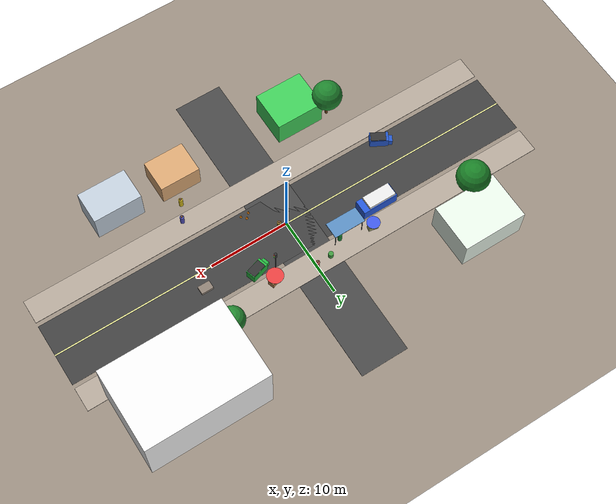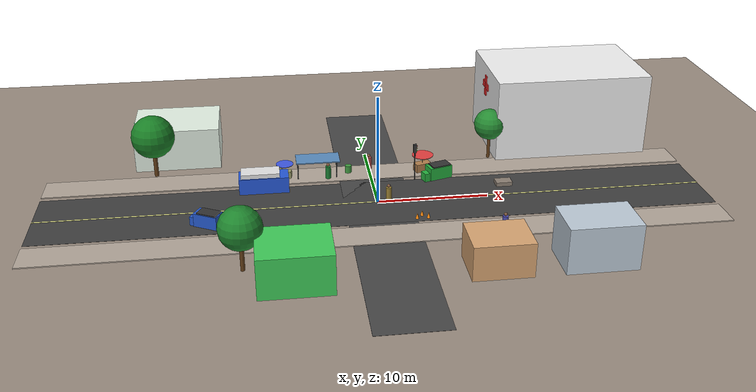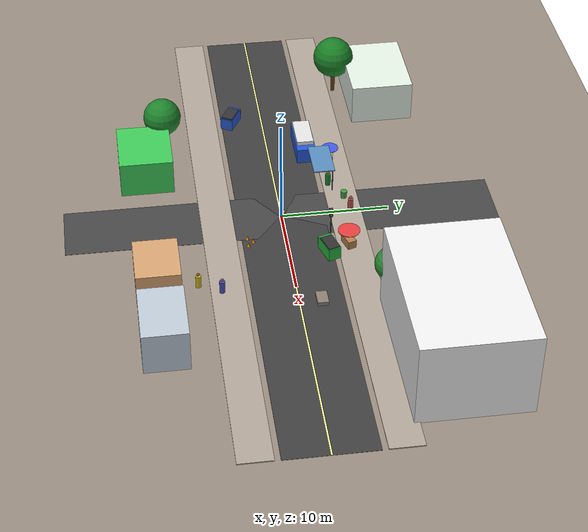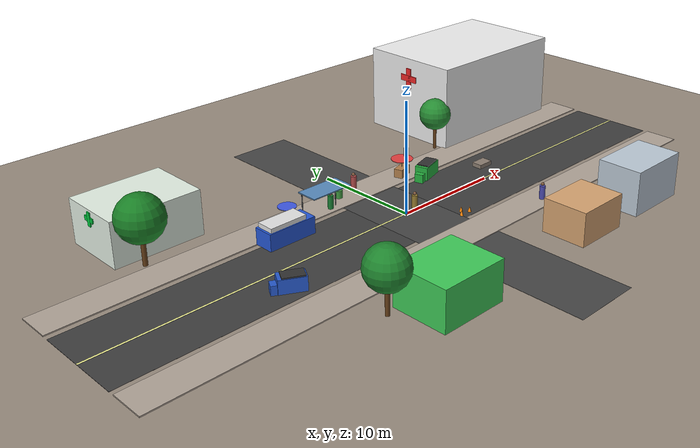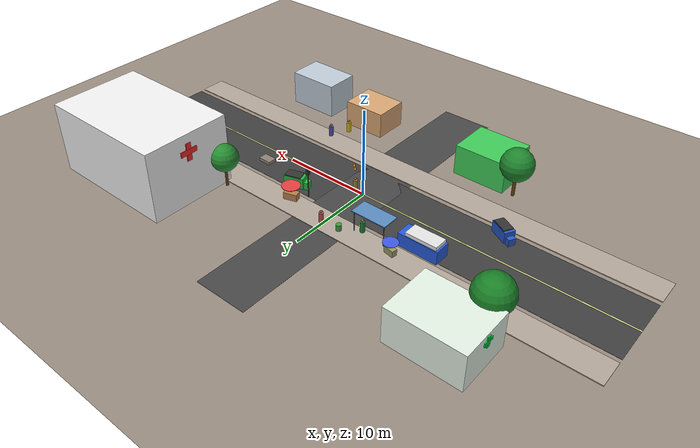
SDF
<?xml version="1.0" ?>
<sdf version="1.7">
  <world name="addis_ababa_urban">

    <!-- ==================== PHYSICS ==================== -->
    <physics type="ode">
      <max_step_size>0.001</max_step_size>
      <real_time_factor>1</real_time_factor>
      <real_time_update_rate>1000</real_time_update_rate>
      <gravity xyz="0 0 -9.81"/>
    </physics>

    <!-- ==================== SCENE ==================== -->
    <scene>
      <ambient>0.6 0.6 0.6 1</ambient>
      <background>0.7 0.85 1.0 1</background>
      <shadows>true</shadows>
    </scene>

    <!-- ==================== LIGHTING ==================== -->
    <!-- Ethiopian Highland Sun -->
    <light type="directional" name="sun">
      <cast_shadows>true</cast_shadows>
      <pose>0 0 50 0 0 0</pose>
      <diffuse>0.9 0.9 0.8 1</diffuse>
      <specular>0.3 0.3 0.3 1</specular>
      <direction>-0.5 0.3 -1</direction>
    </light>

    <!-- Ambient fill light -->
    <light type="point" name="ambient_light">
      <pose>0 0 15 0 0 0</pose>
      <diffuse>0.3 0.3 0.35 1</diffuse>
      <specular>0.1 0.1 0.1 1</specular>
      <attenuation>
        <range>100</range>
        <constant>0.5</constant>
        <linear>0.01</linear>
        <quadratic>0.001</quadratic>
      </attenuation>
    </light>

    <!-- ==================== GROUND PLANE ==================== -->
    <model name="ground_plane">
      <static>true</static>
      <link name="link">
        <collision name="collision">
          <geometry>
            <plane>
              <normal>0 0 1</normal>
              <size>200 200</size>
            </plane>
          </geometry>
          <surface>
            <friction>
              <ode>
                <mu>100</mu>
                <mu2>50</mu2>
              </ode>
            </friction>
          </surface>
        </collision>
        <visual name="visual">
          <geometry>
            <plane>
              <normal>0 0 1</normal>
              <size>200 200</size>
            </plane>
          </geometry>
          <material>
            <ambient>0.5 0.45 0.4 1</ambient>
            <diffuse>0.6 0.55 0.5 1</diffuse>
          </material>
        </visual>
      </link>
    </model>

    <!-- ==================== MAIN ROAD ==================== -->
    <model name="main_road">
      <static>true</static>
      <pose>0 0 0.01 0 0 0</pose>
      <link name="link">
        <collision name="collision">
          <geometry>
            <box>
              <size>60 8 0.02</size>
            </box>
          </geometry>
        </collision>
        <visual name="visual">
          <geometry>
            <box>
              <size>60 8 0.02</size>
            </box>
          </geometry>
          <material>
            <ambient>0.2 0.2 0.2 1</ambient>
            <diffuse>0.25 0.25 0.25 1</diffuse>
          </material>
        </visual>
      </link>
    </model>

    <!-- Road Center Line Markings -->
    <model name="center_line">
      <static>true</static>
      <pose>0 0 0.025 0 0 0</pose>
      <link name="link">
        <visual name="visual">
          <geometry>
            <box>
              <size>60 0.15 0.01</size>
            </box>
          </geometry>
          <material>
            <ambient>1 1 0.8 1</ambient>
            <diffuse>1 1 0.6 1</diffuse>
          </material>
        </visual>
      </link>
    </model>

    <!-- ==================== CROSS STREET ==================== -->
    <model name="cross_street">
      <static>true</static>
      <pose>0 0 0.01 0 0 1.5708</pose>
      <link name="link">
        <collision name="collision">
          <geometry>
            <box>
              <size>40 6 0.02</size>
            </box>
          </geometry>
        </collision>
        <visual name="visual">
          <geometry>
            <box>
              <size>40 6 0.02</size>
            </box>
          </geometry>
          <material>
            <ambient>0.22 0.22 0.22 1</ambient>
            <diffuse>0.28 0.28 0.28 1</diffuse>
          </material>
        </visual>
      </link>
    </model>

    <!-- ==================== SIDEWALKS ==================== -->
    <!-- North Sidewalk -->
    <model name="sidewalk_north">
      <static>true</static>
      <pose>0 6 0.05 0 0 0</pose>
      <link name="link">
        <collision name="collision">
          <geometry>
            <box>
              <size>60 3 0.1</size>
            </box>
          </geometry>
        </collision>
        <visual name="visual">
          <geometry>
            <box>
              <size>60 3 0.1</size>
            </box>
          </geometry>
          <material>
            <ambient>0.65 0.6 0.55 1</ambient>
            <diffuse>0.7 0.65 0.6 1</diffuse>
          </material>
        </visual>
      </link>
    </model>

    <!-- South Sidewalk -->
    <model name="sidewalk_south">
      <static>true</static>
      <pose>0 -6 0.05 0 0 0</pose>
      <link name="link">
        <collision name="collision">
          <geometry>
            <box>
              <size>60 3 0.1</size>
            </box>
          </geometry>
        </collision>
        <visual name="visual">
          <geometry>
            <box>
              <size>60 3 0.1</size>
            </box>
          </geometry>
          <material>
            <ambient>0.65 0.6 0.55 1</ambient>
            <diffuse>0.7 0.65 0.6 1</diffuse>
          </material>
        </visual>
      </link>
    </model>

    <!-- ==================== HOSPITAL (Delivery Destination) ==================== -->
    <model name="tikur_anbessa_hospital">
      <static>true</static>
      <pose>20 12 0 0 0 0</pose>
      <link name="link">
        <!-- Main Building -->
        <collision name="collision">
          <geometry>
            <box>
              <size>15 10 8</size>
            </box>
          </geometry>
          <pose>0 0 4 0 0 0</pose>
        </collision>
        <visual name="main_building">
          <geometry>
            <box>
              <size>15 10 8</size>
            </box>
          </geometry>
          <pose>0 0 4 0 0 0</pose>
          <material>
            <ambient>0.9 0.9 0.9 1</ambient>
            <diffuse>0.95 0.95 0.95 1</diffuse>
          </material>
        </visual>
        <!-- Red Cross Symbol -->
        <visual name="cross_h">
          <geometry>
            <box>
              <size>0.1 2 0.6</size>
            </box>
          </geometry>
          <pose>-7.55 0 6 0 0 0</pose>
          <material>
            <ambient>0.9 0.1 0.1 1</ambient>
            <diffuse>0.95 0.15 0.15 1</diffuse>
          </material>
        </visual>
        <visual name="cross_v">
          <geometry>
            <box>
              <size>0.1 0.6 2</size>
            </box>
          </geometry>
          <pose>-7.55 0 6 0 0 0</pose>
          <material>
            <ambient>0.9 0.1 0.1 1</ambient>
            <diffuse>0.95 0.15 0.15 1</diffuse>
          </material>
        </visual>
      </link>
    </model>

    <!-- ==================== CLINIC (Secondary Destination) ==================== -->
    <model name="health_clinic">
      <static>true</static>
      <pose>-18 12 0 0 0 0</pose>
      <link name="link">
        <collision name="collision">
          <geometry>
            <box>
              <size>8 6 4</size>
            </box>
          </geometry>
          <pose>0 0 2 0 0 0</pose>
        </collision>
        <visual name="visual">
          <geometry>
            <box>
              <size>8 6 4</size>
            </box>
          </geometry>
          <pose>0 0 2 0 0 0</pose>
          <material>
            <ambient>0.85 0.9 0.85 1</ambient>
            <diffuse>0.9 0.95 0.9 1</diffuse>
          </material>
        </visual>
        <!-- Green Cross for Clinic -->
        <visual name="clinic_cross_h">
          <geometry>
            <box>
              <size>0.1 1.2 0.4</size>
            </box>
          </geometry>
          <pose>-4.05 0 3.2 0 0 0</pose>
          <material>
            <ambient>0.0 0.7 0.2 1</ambient>
            <diffuse>0.0 0.8 0.25 1</diffuse>
          </material>
        </visual>
        <visual name="clinic_cross_v">
          <geometry>
            <box>
              <size>0.1 0.4 1.2</size>
            </box>
          </geometry>
          <pose>-4.05 0 3.2 0 0 0</pose>
          <material>
            <ambient>0.0 0.7 0.2 1</ambient>
            <diffuse>0.0 0.8 0.25 1</diffuse>
          </material>
        </visual>
      </link>
    </model>

    <!-- ==================== PHARMACY ==================== -->
    <model name="pharmacy">
      <static>true</static>
      <pose>-8 -12 0 0 0 0</pose>
      <link name="link">
        <collision name="collision">
          <geometry>
            <box>
              <size>6 5 3.5</size>
            </box>
          </geometry>
          <pose>0 0 1.75 0 0 0</pose>
        </collision>
        <visual name="visual">
          <geometry>
            <box>
              <size>6 5 3.5</size>
            </box>
          </geometry>
          <pose>0 0 1.75 0 0 0</pose>
          <material>
            <ambient>0.2 0.7 0.3 1</ambient>
            <diffuse>0.25 0.8 0.35 1</diffuse>
          </material>
        </visual>
      </link>
    </model>

    <!-- ==================== COMMERCIAL BUILDINGS ==================== -->
    <!-- Ethiopian Style Shop 1 -->
    <model name="shop_1">
      <static>true</static>
      <pose>8 -12 0 0 0 0</pose>
      <link name="link">
        <collision name="collision">
          <geometry>
            <box>
              <size>5 4 3</size>
            </box>
          </geometry>
          <pose>0 0 1.5 0 0 0</pose>
        </collision>
        <visual name="visual">
          <geometry>
            <box>
              <size>5 4 3</size>
            </box>
          </geometry>
          <pose>0 0 1.5 0 0 0</pose>
          <material>
            <ambient>0.8 0.6 0.4 1</ambient>
            <diffuse>0.85 0.65 0.45 1</diffuse>
          </material>
        </visual>
      </link>
    </model>

    <!-- Ethiopian Style Shop 2 -->
    <model name="shop_2">
      <static>true</static>
      <pose>16 -12 0 0 0 0</pose>
      <link name="link">
        <collision name="collision">
          <geometry>
            <box>
              <size>6 4 4</size>
            </box>
          </geometry>
          <pose>0 0 2 0 0 0</pose>
        </collision>
        <visual name="visual">
          <geometry>
            <box>
              <size>6 4 4</size>
            </box>
          </geometry>
          <pose>0 0 2 0 0 0</pose>
          <material>
            <ambient>0.7 0.75 0.8 1</ambient>
            <diffuse>0.75 0.8 0.85 1</diffuse>
          </material>
        </visual>
      </link>
    </model>

    <!-- ==================== MINIBUS TAXI STOP ==================== -->
    <model name="minibus_stop">
      <static>true</static>
      <pose>-5 4.5 0 0 0 0</pose>
      <link name="link">
        <!-- Shelter Roof -->
        <visual name="roof">
          <geometry>
            <box>
              <size>4 2 0.1</size>
            </box>
          </geometry>
          <pose>0 0 2.5 0 0 0</pose>
          <material>
            <ambient>0.3 0.5 0.7 1</ambient>
            <diffuse>0.35 0.55 0.75 1</diffuse>
          </material>
        </visual>
        <!-- Support Poles -->
        <visual name="pole_1">
          <geometry>
            <cylinder>
              <radius>0.05</radius>
              <length>2.5</length>
            </cylinder>
          </geometry>
          <pose>-1.8 0.8 1.25 0 0 0</pose>
          <material>
            <ambient>0.4 0.4 0.4 1</ambient>
          </material>
        </visual>
        <visual name="pole_2">
          <geometry>
            <cylinder>
              <radius>0.05</radius>
              <length>2.5</length>
            </cylinder>
          </geometry>
          <pose>1.8 0.8 1.25 0 0 0</pose>
          <material>
            <ambient>0.4 0.4 0.4 1</ambient>
          </material>
        </visual>
        <collision name="collision">
          <geometry>
            <box>
              <size>4 2 2.5</size>
            </box>
          </geometry>
          <pose>0 0 1.25 0 0 0</pose>
        </collision>
      </link>
    </model>

    <!-- ==================== BAJAJ (Ethiopian Three-Wheeler Taxi) ==================== -->
    <model name="bajaj_1">
      <static>true</static>
      <pose>6 3.5 0 0 0 0.3</pose>
      <link name="link">
        <!-- Main Body -->
        <collision name="collision">
          <geometry>
            <box>
              <size>2.5 1.3 1.8</size>
            </box>
          </geometry>
          <pose>0 0 0.9 0 0 0</pose>
        </collision>
        <visual name="body">
          <geometry>
            <box>
              <size>2.2 1.2 1.2</size>
            </box>
          </geometry>
          <pose>0.2 0 1.0 0 0 0</pose>
          <material>
            <!-- Bajaj green-yellow (common in Addis) -->
            <ambient>0.1 0.6 0.2 1</ambient>
            <diffuse>0.15 0.7 0.25 1</diffuse>
          </material>
        </visual>
        <!-- Front Hood -->
        <visual name="front">
          <geometry>
            <box>
              <size>0.8 0.8 0.8</size>
            </box>
          </geometry>
          <pose>-1.0 0 0.7 0 0 0</pose>
          <material>
            <ambient>0.1 0.6 0.2 1</ambient>
            <diffuse>0.15 0.7 0.25 1</diffuse>
          </material>
        </visual>
        <!-- Roof -->
        <visual name="roof">
          <geometry>
            <box>
              <size>1.8 1.1 0.1</size>
            </box>
          </geometry>
          <pose>0.3 0 1.65 0 0 0</pose>
          <material>
            <ambient>0.2 0.2 0.2 1</ambient>
          </material>
        </visual>
      </link>
    </model>

    <!-- Second Bajaj -->
    <model name="bajaj_2">
      <static>true</static>
      <pose>-15 -3 0 0 0 -0.5</pose>
      <link name="link">
        <collision name="collision">
          <geometry>
            <box>
              <size>2.5 1.3 1.8</size>
            </box>
          </geometry>
          <pose>0 0 0.9 0 0 0</pose>
        </collision>
        <visual name="body">
          <geometry>
            <box>
              <size>2.2 1.2 1.2</size>
            </box>
          </geometry>
          <pose>0.2 0 1.0 0 0 0</pose>
          <material>
            <!-- Blue Bajaj variant -->
            <ambient>0.1 0.3 0.7 1</ambient>
            <diffuse>0.15 0.35 0.8 1</diffuse>
          </material>
        </visual>
        <visual name="front">
          <geometry>
            <box>
              <size>0.8 0.8 0.8</size>
            </box>
          </geometry>
          <pose>-1.0 0 0.7 0 0 0</pose>
          <material>
            <ambient>0.1 0.3 0.7 1</ambient>
            <diffuse>0.15 0.35 0.8 1</diffuse>
          </material>
        </visual>
        <visual name="roof">
          <geometry>
            <box>
              <size>1.8 1.1 0.1</size>
            </box>
          </geometry>
          <pose>0.3 0 1.65 0 0 0</pose>
          <material>
            <ambient>0.2 0.2 0.2 1</ambient>
          </material>
        </visual>
      </link>
    </model>

    <!-- ==================== PARKED MINIBUS TAXI ==================== -->
    <model name="minibus_taxi">
      <static>true</static>
      <pose>-10 3.5 0 0 0 0</pose>
      <link name="link">
        <collision name="collision">
          <geometry>
            <box>
              <size>4.5 1.8 2</size>
            </box>
          </geometry>
          <pose>0 0 1 0 0 0</pose>
        </collision>
        <visual name="body">
          <geometry>
            <box>
              <size>4.5 1.8 1.5</size>
            </box>
          </geometry>
          <pose>0 0 0.9 0 0 0</pose>
          <material>
            <!-- Blue and white minibus (typical Addis) -->
            <ambient>0.1 0.3 0.8 1</ambient>
            <diffuse>0.15 0.35 0.85 1</diffuse>
          </material>
        </visual>
        <visual name="roof">
          <geometry>
            <box>
              <size>3.5 1.6 0.4</size>
            </box>
          </geometry>
          <pose>-0.3 0 1.85 0 0 0</pose>
          <material>
            <ambient>0.9 0.9 0.9 1</ambient>
          </material>
        </visual>
      </link>
    </model>

    <!-- ==================== STREET VENDOR CART ==================== -->
    <model name="vendor_cart">
      <static>true</static>
      <pose>5 5.5 0 0 0 0.3</pose>
      <link name="link">
        <collision name="collision">
          <geometry>
            <box>
              <size>1.5 0.8 1.2</size>
            </box>
          </geometry>
          <pose>0 0 0.6 0 0 0</pose>
        </collision>
        <visual name="cart">
          <geometry>
            <box>
              <size>1.5 0.8 0.8</size>
            </box>
          </geometry>
          <pose>0 0 0.6 0 0 0</pose>
          <material>
            <ambient>0.6 0.4 0.2 1</ambient>
            <diffuse>0.7 0.5 0.3 1</diffuse>
          </material>
        </visual>
        <!-- Umbrella -->
        <visual name="umbrella">
          <geometry>
            <cylinder>
              <radius>1.0</radius>
              <length>0.05</length>
            </cylinder>
          </geometry>
          <pose>0 0 1.8 0 0 0</pose>
          <material>
            <ambient>0.8 0.2 0.2 1</ambient>
            <diffuse>0.9 0.25 0.25 1</diffuse>
          </material>
        </visual>
        <visual name="umbrella_pole">
          <geometry>
            <cylinder>
              <radius>0.02</radius>
              <length>1.2</length>
            </cylinder>
          </geometry>
          <pose>0 0 1.2 0 0 0</pose>
          <material>
            <ambient>0.3 0.3 0.3 1</ambient>
          </material>
        </visual>
      </link>
    </model>

    <!-- Second Vendor -->
    <model name="vendor_cart_2">
      <static>true</static>
      <pose>-8 5.8 0 0 0 -0.2</pose>
      <link name="link">
        <collision name="collision">
          <geometry>
            <box>
              <size>1.2 0.6 1.0</size>
            </box>
          </geometry>
          <pose>0 0 0.5 0 0 0</pose>
        </collision>
        <visual name="cart">
          <geometry>
            <box>
              <size>1.2 0.6 0.7</size>
            </box>
          </geometry>
          <pose>0 0 0.5 0 0 0</pose>
          <material>
            <ambient>0.5 0.5 0.3 1</ambient>
            <diffuse>0.6 0.6 0.4 1</diffuse>
          </material>
        </visual>
        <!-- Blue umbrella -->
        <visual name="umbrella">
          <geometry>
            <cylinder>
              <radius>0.8</radius>
              <length>0.05</length>
            </cylinder>
          </geometry>
          <pose>0 0 1.5 0 0 0</pose>
          <material>
            <ambient>0.2 0.3 0.8 1</ambient>
            <diffuse>0.25 0.35 0.9 1</diffuse>
          </material>
        </visual>
      </link>
    </model>

    <!-- ==================== TRAFFIC CONES ==================== -->
    <model name="traffic_cone_1">
      <static>true</static>
      <pose>3 -3.5 0 0 0 0</pose>
      <link name="link">
        <collision name="collision">
          <geometry>
            <cone>
              <radius>0.15</radius>
              <length>0.5</length>
            </cone>
          </geometry>
          <pose>0 0 0.25 0 0 0</pose>
        </collision>
        <visual name="visual">
          <geometry>
            <cone>
              <radius>0.15</radius>
              <length>0.5</length>
            </cone>
          </geometry>
          <pose>0 0 0.25 0 0 0</pose>
          <material>
            <ambient>1 0.5 0 1</ambient>
            <diffuse>1 0.55 0.05 1</diffuse>
          </material>
        </visual>
      </link>
    </model>

    <model name="traffic_cone_2">
      <static>true</static>
      <pose>3.5 -3 0 0 0 0</pose>
      <link name="link">
        <collision name="collision">
          <geometry>
            <cone>
              <radius>0.15</radius>
              <length>0.5</length>
            </cone>
          </geometry>
          <pose>0 0 0.25 0 0 0</pose>
        </collision>
        <visual name="visual">
          <geometry>
            <cone>
              <radius>0.15</radius>
              <length>0.5</length>
            </cone>
          </geometry>
          <pose>0 0 0.25 0 0 0</pose>
          <material>
            <ambient>1 0.5 0 1</ambient>
            <diffuse>1 0.55 0.05 1</diffuse>
          </material>
        </visual>
      </link>
    </model>

    <model name="traffic_cone_3">
      <static>true</static>
      <pose>4 -3.5 0 0 0 0</pose>
      <link name="link">
        <collision name="collision">
          <geometry>
            <cone>
              <radius>0.15</radius>
              <length>0.5</length>
            </cone>
          </geometry>
          <pose>0 0 0.25 0 0 0</pose>
        </collision>
        <visual name="visual">
          <geometry>
            <cone>
              <radius>0.15</radius>
              <length>0.5</length>
            </cone>
          </geometry>
          <pose>0 0 0.25 0 0 0</pose>
          <material>
            <ambient>1 0.5 0 1</ambient>
            <diffuse>1 0.55 0.05 1</diffuse>
          </material>
        </visual>
      </link>
    </model>

    <!-- ==================== POTHOLES (Terrain Challenges) ==================== -->
    <model name="pothole_1">
      <static>true</static>
      <pose>-3 1 -0.08 0 0 0</pose>
      <link name="link">
        <collision name="collision">
          <geometry>
            <cylinder>
              <radius>0.4</radius>
              <length>0.1</length>
            </cylinder>
          </geometry>
        </collision>
        <visual name="visual">
          <geometry>
            <cylinder>
              <radius>0.4</radius>
              <length>0.1</length>
            </cylinder>
          </geometry>
          <material>
            <ambient>0.15 0.15 0.15 1</ambient>
            <diffuse>0.1 0.1 0.1 1</diffuse>
          </material>
        </visual>
      </link>
    </model>

    <model name="pothole_2">
      <static>true</static>
      <pose>10 -1.5 -0.06 0 0 0</pose>
      <link name="link">
        <collision name="collision">
          <geometry>
            <cylinder>
              <radius>0.3</radius>
              <length>0.08</length>
            </cylinder>
          </geometry>
        </collision>
        <visual name="visual">
          <geometry>
            <cylinder>
              <radius>0.3</radius>
              <length>0.08</length>
            </cylinder>
          </geometry>
          <material>
            <ambient>0.12 0.12 0.12 1</ambient>
            <diffuse>0.08 0.08 0.08 1</diffuse>
          </material>
        </visual>
      </link>
    </model>

    <!-- ==================== CONSTRUCTION DEBRIS ==================== -->
    <model name="debris_pile">
      <static>true</static>
      <pose>12 2 0 0 0 0</pose>
      <link name="link">
        <collision name="collision">
          <geometry>
            <box>
              <size>1.5 1.0 0.4</size>
            </box>
          </geometry>
          <pose>0 0 0.2 0 0 0</pose>
        </collision>
        <visual name="visual">
          <geometry>
            <box>
              <size>1.5 1.0 0.4</size>
            </box>
          </geometry>
          <pose>0 0 0.2 0 0 0</pose>
          <material>
            <ambient>0.5 0.45 0.4 1</ambient>
            <diffuse>0.55 0.5 0.45 1</diffuse>
          </material>
        </visual>
      </link>
    </model>

    <!-- ==================== STATIC PEDESTRIANS ==================== -->
    <!-- Standing Pedestrian 1 (waiting at bus stop) -->
    <model name="pedestrian_standing_1">
      <static>true</static>
      <pose>-4 5.0 0 0 0 -1.57</pose>
      <link name="link">
        <collision name="collision">
          <geometry>
            <cylinder>
              <radius>0.3</radius>
              <length>1.7</length>
            </cylinder>
          </geometry>
          <pose>0 0 0.85 0 0 0</pose>
        </collision>
        <visual name="body">
          <geometry>
            <cylinder>
              <radius>0.25</radius>
              <length>1.2</length>
            </cylinder>
          </geometry>
          <pose>0 0 0.8 0 0 0</pose>
          <material>
            <!-- Ethiopian green clothing -->
            <ambient>0.1 0.5 0.2 1</ambient>
          </material>
        </visual>
        <visual name="head">
          <geometry>
            <sphere>
              <radius>0.15</radius>
            </sphere>
          </geometry>
          <pose>0 0 1.55 0 0 0</pose>
          <material>
            <ambient>0.5 0.35 0.25 1</ambient>
          </material>
        </visual>
      </link>
    </model>

    <!-- Standing Pedestrian 2 (near shop) -->
    <model name="pedestrian_standing_2">
      <static>true</static>
      <pose>9 -8.5 0 0 0 1.57</pose>
      <link name="link">
        <collision name="collision">
          <geometry>
            <cylinder>
              <radius>0.3</radius>
              <length>1.7</length>
            </cylinder>
          </geometry>
          <pose>0 0 0.85 0 0 0</pose>
        </collision>
        <visual name="body">
          <geometry>
            <cylinder>
              <radius>0.25</radius>
              <length>1.2</length>
            </cylinder>
          </geometry>
          <pose>0 0 0.8 0 0 0</pose>
          <material>
            <!-- Ethiopian yellow clothing -->
            <ambient>0.8 0.7 0.1 1</ambient>
          </material>
        </visual>
        <visual name="head">
          <geometry>
            <sphere>
              <radius>0.15</radius>
            </sphere>
          </geometry>
          <pose>0 0 1.55 0 0 0</pose>
          <material>
            <ambient>0.5 0.35 0.25 1</ambient>
          </material>
        </visual>
      </link>
    </model>

    <!-- ==================== ADDITIONAL STATIC PEDESTRIANS ==================== -->
    <!-- (Dynamic actors removed for Gazebo Classic compatibility) -->

    <!-- Walking Pedestrian 1 - North sidewalk (static representation) -->
    <model name="pedestrian_walking_1">
      <static>true</static>
      <pose>0 6.5 0 0 0 0</pose>
      <link name="link">
        <collision name="collision">
          <geometry>
            <cylinder>
              <radius>0.3</radius>
              <length>1.7</length>
            </cylinder>
          </geometry>
          <pose>0 0 0.85 0 0 0</pose>
        </collision>
        <visual name="body">
          <geometry>
            <cylinder>
              <radius>0.25</radius>
              <length>1.2</length>
            </cylinder>
          </geometry>
          <pose>0 0 0.8 0 0 0</pose>
          <material>
            <ambient>0.7 0.3 0.3 1</ambient>
          </material>
        </visual>
        <visual name="head">
          <geometry>
            <sphere>
              <radius>0.15</radius>
            </sphere>
          </geometry>
          <pose>0 0 1.55 0 0 0</pose>
          <material>
            <ambient>0.5 0.35 0.25 1</ambient>
          </material>
        </visual>
      </link>
    </model>

    <!-- Walking Pedestrian 2 - South sidewalk (static representation) -->
    <model name="pedestrian_walking_2">
      <static>true</static>
      <pose>10 -6.5 0 0 0 3.14</pose>
      <link name="link">
        <collision name="collision">
          <geometry>
            <cylinder>
              <radius>0.3</radius>
              <length>1.7</length>
            </cylinder>
          </geometry>
          <pose>0 0 0.85 0 0 0</pose>
        </collision>
        <visual name="body">
          <geometry>
            <cylinder>
              <radius>0.25</radius>
              <length>1.2</length>
            </cylinder>
          </geometry>
          <pose>0 0 0.8 0 0 0</pose>
          <material>
            <ambient>0.3 0.3 0.7 1</ambient>
          </material>
        </visual>
        <visual name="head">
          <geometry>
            <sphere>
              <radius>0.15</radius>
            </sphere>
          </geometry>
          <pose>0 0 1.55 0 0 0</pose>
          <material>
            <ambient>0.5 0.35 0.25 1</ambient>
          </material>
        </visual>
      </link>
    </model>

    <!-- Walking Pedestrian 3 - Cross street (static representation) -->
    <model name="pedestrian_walking_3">
      <static>true</static>
      <pose>1 0 0 0 0 1.57</pose>
      <link name="link">
        <collision name="collision">
          <geometry>
            <cylinder>
              <radius>0.3</radius>
              <length>1.7</length>
            </cylinder>
          </geometry>
          <pose>0 0 0.85 0 0 0</pose>
        </collision>
        <visual name="body">
          <geometry>
            <cylinder>
              <radius>0.25</radius>
              <length>1.2</length>
            </cylinder>
          </geometry>
          <pose>0 0 0.8 0 0 0</pose>
          <material>
            <ambient>0.6 0.5 0.2 1</ambient>
          </material>
        </visual>
        <visual name="head">
          <geometry>
            <sphere>
              <radius>0.15</radius>
            </sphere>
          </geometry>
          <pose>0 0 1.55 0 0 0</pose>
          <material>
            <ambient>0.5 0.35 0.25 1</ambient>
          </material>
        </visual>
      </link>
    </model>

    <!-- ==================== TREES (Ethiopian Vegetation) ==================== -->
    <model name="tree_1">
      <static>true</static>
      <pose>-20 8 0 0 0 0</pose>
      <link name="link">
        <visual name="trunk">
          <geometry>
            <cylinder>
              <radius>0.2</radius>
              <length>3</length>
            </cylinder>
          </geometry>
          <pose>0 0 1.5 0 0 0</pose>
          <material>
            <ambient>0.4 0.25 0.1 1</ambient>
          </material>
        </visual>
        <visual name="canopy">
          <geometry>
            <sphere>
              <radius>2</radius>
            </sphere>
          </geometry>
          <pose>0 0 4 0 0 0</pose>
          <material>
            <ambient>0.1 0.5 0.15 1</ambient>
          </material>
        </visual>
        <collision name="collision">
          <geometry>
            <cylinder>
              <radius>0.3</radius>
              <length>3</length>
            </cylinder>
          </geometry>
          <pose>0 0 1.5 0 0 0</pose>
        </collision>
      </link>
    </model>

    <model name="tree_2">
      <static>true</static>
      <pose>12 8 0 0 0 0</pose>
      <link name="link">
        <visual name="trunk">
          <geometry>
            <cylinder>
              <radius>0.15</radius>
              <length>2.5</length>
            </cylinder>
          </geometry>
          <pose>0 0 1.25 0 0 0</pose>
          <material>
            <ambient>0.4 0.25 0.1 1</ambient>
          </material>
        </visual>
        <visual name="canopy">
          <geometry>
            <sphere>
              <radius>1.5</radius>
            </sphere>
          </geometry>
          <pose>0 0 3.5 0 0 0</pose>
          <material>
            <ambient>0.15 0.55 0.2 1</ambient>
          </material>
        </visual>
        <collision name="collision">
          <geometry>
            <cylinder>
              <radius>0.25</radius>
              <length>2.5</length>
            </cylinder>
          </geometry>
          <pose>0 0 1.25 0 0 0</pose>
        </collision>
      </link>
    </model>

    <model name="tree_3">
      <static>true</static>
      <pose>-12 -10 0 0 0 0</pose>
      <link name="link">
        <visual name="trunk">
          <geometry>
            <cylinder>
              <radius>0.18</radius>
              <length>2.8</length>
            </cylinder>
          </geometry>
          <pose>0 0 1.4 0 0 0</pose>
          <material>
            <ambient>0.4 0.25 0.1 1</ambient>
          </material>
        </visual>
        <visual name="canopy">
          <geometry>
            <sphere>
              <radius>1.8</radius>
            </sphere>
          </geometry>
          <pose>0 0 3.8 0 0 0</pose>
          <material>
            <ambient>0.12 0.52 0.18 1</ambient>
          </material>
        </visual>
        <collision name="collision">
          <geometry>
            <cylinder>
              <radius>0.28</radius>
              <length>2.8</length>
            </cylinder>
          </geometry>
          <pose>0 0 1.4 0 0 0</pose>
        </collision>
      </link>
    </model>

    <!-- ==================== TRAFFIC LIGHT ==================== -->
    <model name="traffic_light">
      <static>true</static>
      <pose>4 4 0 0 0 0</pose>
      <link name="link">
        <!-- Pole -->
        <visual name="pole">
          <geometry>
            <cylinder>
              <radius>0.05</radius>
              <length>3</length>
            </cylinder>
          </geometry>
          <pose>0 0 1.5 0 0 0</pose>
          <material>
            <ambient>0.3 0.3 0.3 1</ambient>
          </material>
        </visual>
        <!-- Light housing -->
        <visual name="housing">
          <geometry>
            <box>
              <size>0.3 0.3 0.8</size>
            </box>
          </geometry>
          <pose>0 0 3.2 0 0 0</pose>
          <material>
            <ambient>0.2 0.2 0.2 1</ambient>
          </material>
        </visual>
        <!-- Red light -->
        <visual name="red_light">
          <geometry>
            <sphere>
              <radius>0.08</radius>
            </sphere>
          </geometry>
          <pose>0.15 0 3.45 0 0 0</pose>
          <material>
            <ambient>0.8 0.1 0.1 1</ambient>
            <diffuse>0.9 0.15 0.15 1</diffuse>
            <emissive>0.3 0.0 0.0 1</emissive>
          </material>
        </visual>
        <!-- Yellow light -->
        <visual name="yellow_light">
          <geometry>
            <sphere>
              <radius>0.08</radius>
            </sphere>
          </geometry>
          <pose>0.15 0 3.2 0 0 0</pose>
          <material>
            <ambient>0.8 0.8 0.1 1</ambient>
            <diffuse>0.9 0.9 0.15 1</diffuse>
          </material>
        </visual>
        <!-- Green light -->
        <visual name="green_light">
          <geometry>
            <sphere>
              <radius>0.08</radius>
            </sphere>
          </geometry>
          <pose>0.15 0 2.95 0 0 0</pose>
          <material>
            <ambient>0.1 0.8 0.1 1</ambient>
            <diffuse>0.15 0.9 0.15 1</diffuse>
          </material>
        </visual>
        <collision name="collision">
          <geometry>
            <cylinder>
              <radius>0.1</radius>
              <length>3.5</length>
            </cylinder>
          </geometry>
          <pose>0 0 1.75 0 0 0</pose>
        </collision>
      </link>
    </model>

    <!-- ==================== GARBAGE BIN ==================== -->
    <model name="garbage_bin">
      <static>true</static>
      <pose>-2 6.2 0 0 0 0</pose>
      <link name="link">
        <collision name="collision">
          <geometry>
            <cylinder>
              <radius>0.3</radius>
              <length>0.8</length>
            </cylinder>
          </geometry>
          <pose>0 0 0.4 0 0 0</pose>
        </collision>
        <visual name="visual">
          <geometry>
            <cylinder>
              <radius>0.3</radius>
              <length>0.8</length>
            </cylinder>
          </geometry>
          <pose>0 0 0.4 0 0 0</pose>
          <material>
            <ambient>0.2 0.5 0.2 1</ambient>
            <diffuse>0.25 0.6 0.25 1</diffuse>
          </material>
        </visual>
      </link>
    </model>

    <!-- ==================== ROBOT SPAWN POINT ==================== -->
    <!-- The robot will spawn at the origin, on the main road -->
    <!-- Home base location: (0, 0, 0) -->

  </world>
</sdf>
